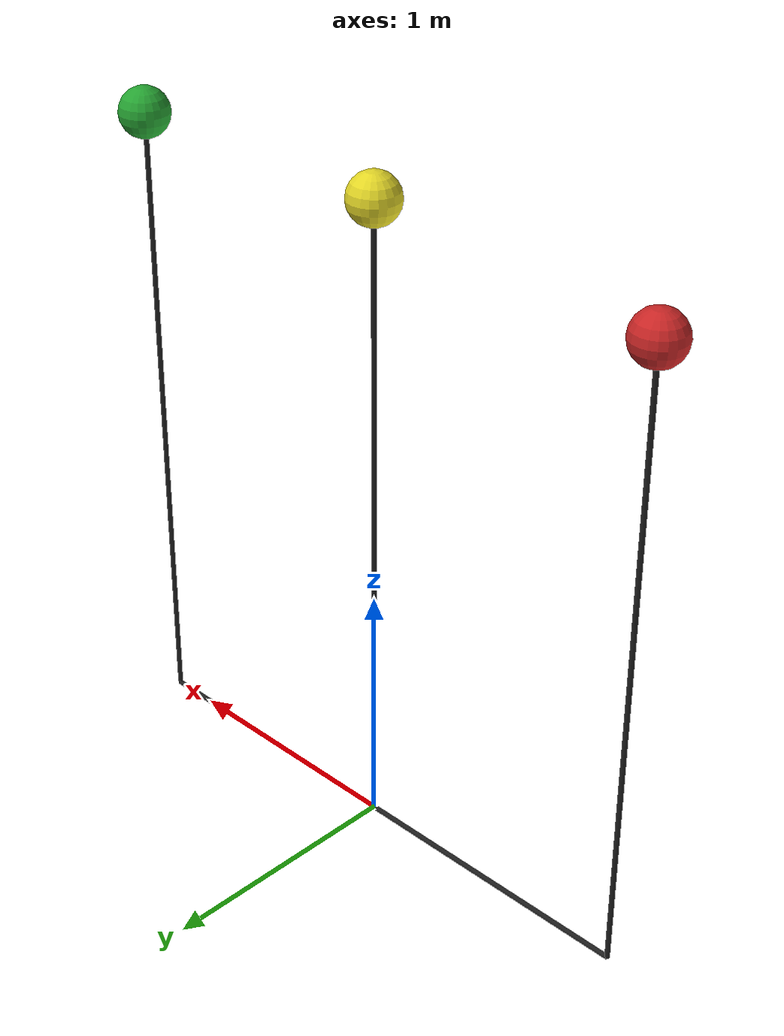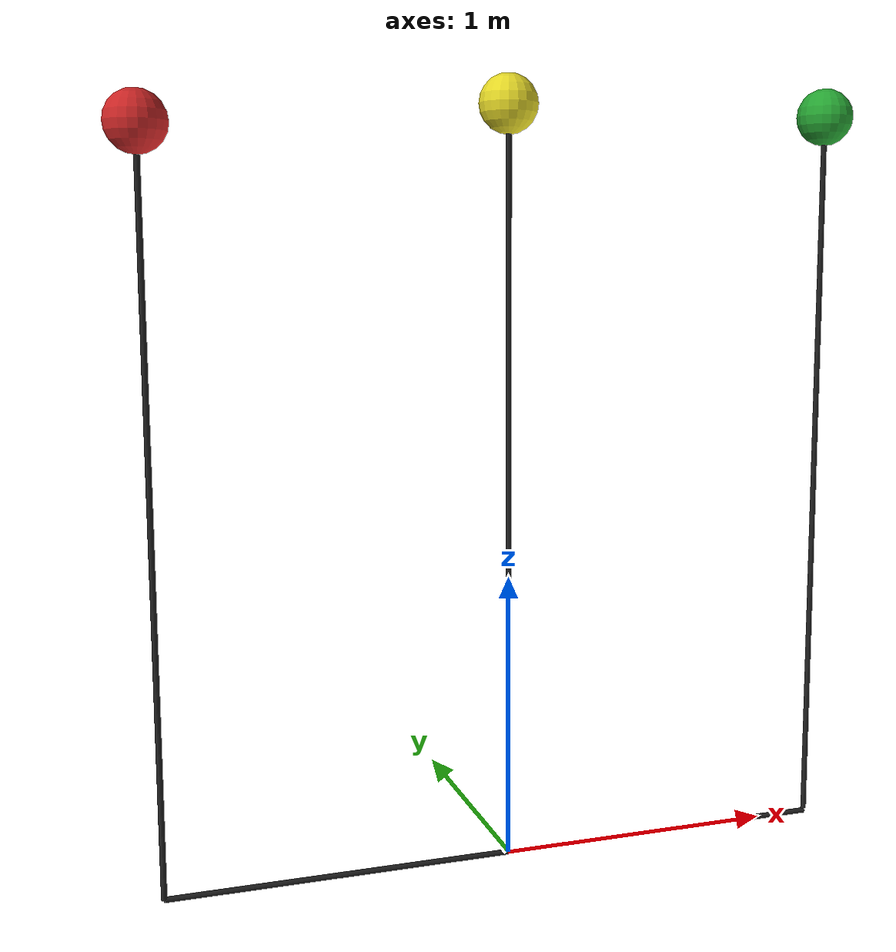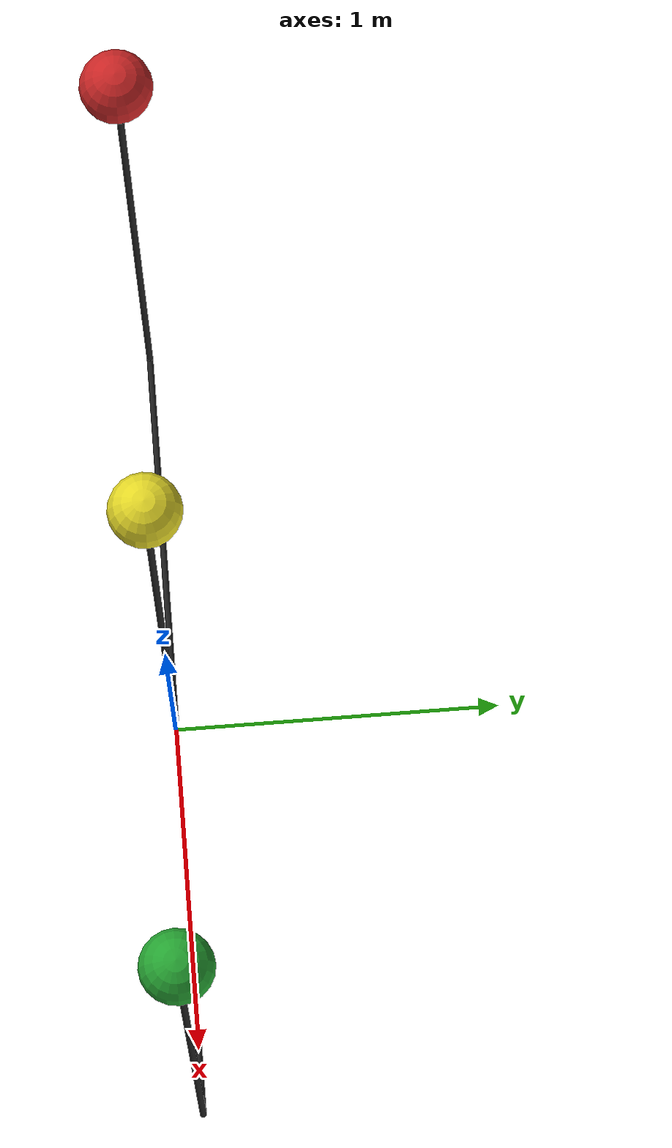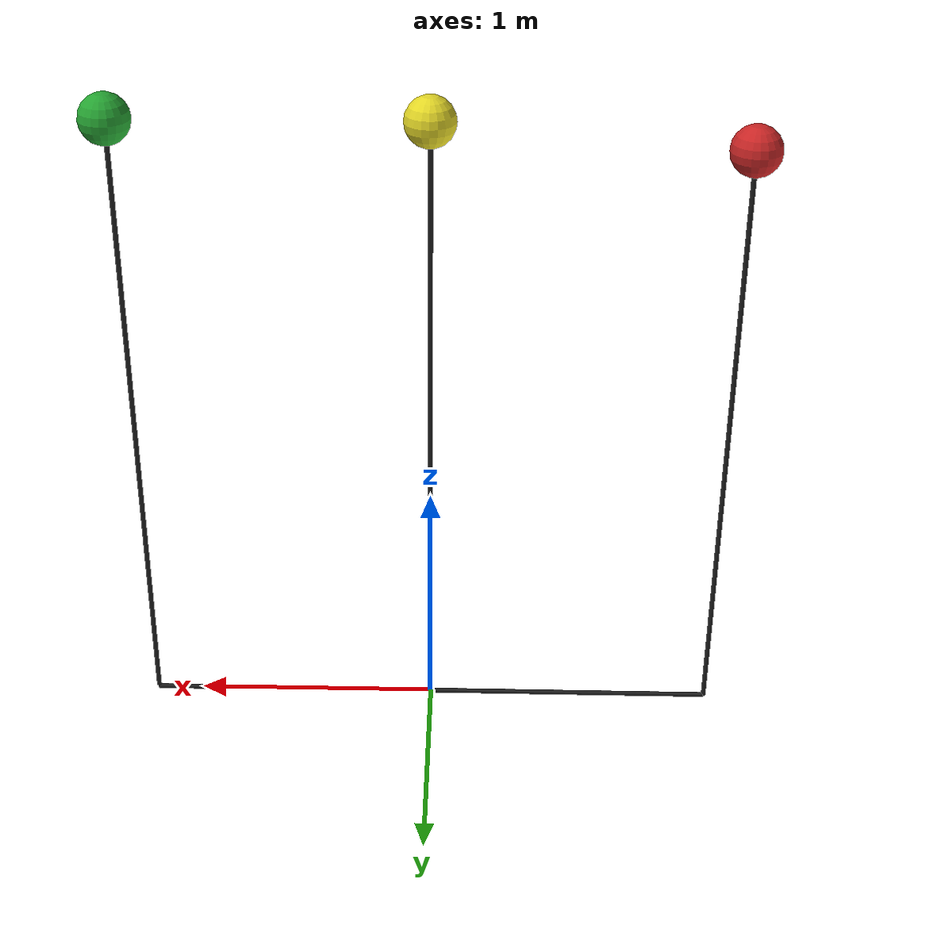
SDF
<?xml version='1.0'?>
<sdf version='1.5'>

  <model name='buoys'>
    <pose>0 0 0 0 0 0</pose>
    <self_collide> 0 </self_collide>
    <static> 1</static>

    <link name='red_buoy'>
      <pose>-1.2 0 2.5 0 0 0</pose>
      <visual name='red_vis'>
        <geometry>
          <sphere><radius>0.1</radius></sphere>
        </geometry>
        <material>
          <script>
            <uri>file://media/materials/scripts/gazebo.material</uri>
            <name>Gazebo/Red</name>
          </script>
          <diffuse>0.6 0 0 1</diffuse>
        </material>
      </visual>
      <collision name='red_collide'>
        <geometry>
          <sphere><radius>0.1</radius></sphere>
        </geometry>
      </collision>
    </link>
    <link name='green_buoy'>
      <pose>1.2 0 2.6 0 0 0</pose>
      <visual name='green_vis'>
        <geometry>
          <sphere><radius>0.1</radius></sphere>
        </geometry>
        <material>
          <script>
            <uri>file://media/materials/scripts/gazebo.material</uri>
            <name>Gazebo/Green</name>
          </script>
          <diffuse>0 0.6 0 1</diffuse>
        </material>
      </visual>
      <collision name='green_collide'>
        <geometry>
          <sphere><radius>0.1</radius></sphere>
        </geometry>
      </collision>
    </link>
    <link name='yellow_buoy'>
        <pose>0 0 2.6 0 0 0</pose>
      <visual name='yellow_vis'>
        <geometry>
          <sphere><radius>0.1</radius></sphere>
        </geometry>
        <material>
          <script>
            <uri>file://media/materials/scripts/gazebo.material</uri>
            <name>Gazebo/Yellow</name>
          </script>
          <diffuse>0.6 0.6 0 1</diffuse>
        </material>
      </visual>
      <collision name='yellow_collide'>
        <geometry>
          <sphere><radius>0.1</radius></sphere>
        </geometry>
      </collision>
    </link>
    <link name='bottom_rod'>
        <pose>0 0 0 0 1.5707 0</pose>
        <visual name='bottom_rod_vis'>
          <geometry>
            <cylinder>
              <radius>0.01</radius>
              <length>2.4</length>
            </cylinder>
          </geometry>
        <material>
          <script>
            <uri>file://media/materials/scripts/gazebo.material</uri>
            <name>Gazebo/FlatBlack</name>
          </script>
          <diffuse>0.3 0.3 0.3 1</diffuse>
        </material>
        </visual>
    </link>
    <link name='red_rod'>
        <pose>-1.2 0 1.2 0 0 0</pose>
        <visual name='red_rod_vis'>
          <geometry>
            <cylinder>
              <radius>0.01</radius>
              <length>2.4</length>
            </cylinder>
          </geometry>
        <material>
          <script>
            <uri>file://media/materials/scripts/gazebo.material</uri>
            <name>Gazebo/FlatBlack</name>
          </script>
          <diffuse>0.3 0.3 0.3 1</diffuse>
        </material>
        </visual>
        <collision name='red_rod_collide'>
            <geometry>
                <cylinder>
                    <radius>0.01</radius>
                    <length>2.4</length>
                </cylinder>
            </geometry>
        </collision>
    </link>
    <link name='green_rod'>
        <pose>0 0 1.26 0 0 0</pose>
        <visual name='green_rod_vis'>
          <geometry>
            <cylinder>
              <radius>0.01</radius>
              <length>2.5</length>
            </cylinder>
          </geometry>
        <material>
          <script>
            <uri>file://media/materials/scripts/gazebo.material</uri>
            <name>Gazebo/FlatBlack</name>
          </script>
          <diffuse>0.3 0.3 0.3 1</diffuse>
        </material>
        </visual>
        <collision name='green_rod_collide'>
            <geometry>
                <cylinder>
                    <radius>0.01</radius>
                    <length>2.5</length>
                </cylinder>
            </geometry>
        </collision>
    </link>
    <link name='yellow_rod'>
        <pose>1.2 0 1.26 0 0 0</pose>
        <visual name='yellow_rod_vis'>
          <geometry>
            <cylinder>
              <radius>0.01</radius>
              <length>2.5</length>
            </cylinder>
          </geometry>
        <material>
          <script>
            <uri>file://media/materials/scripts/gazebo.material</uri>
            <name>Gazebo/FlatBlack</name>
          </script>
          <diffuse>0.3 0.3 0.3 1</diffuse>
        </material>
        </visual>
        <collision name='yellow_rod_collide'>
            <geometry>
                <cylinder>
                    <radius>0.01</radius>
                    <length>2.5</length>
                </cylinder>
            </geometry>
        </collision>
    </link>

  </model>
</sdf>
